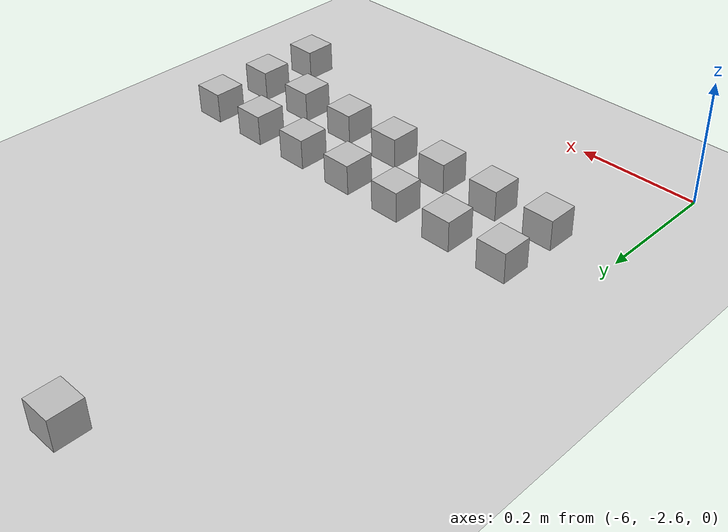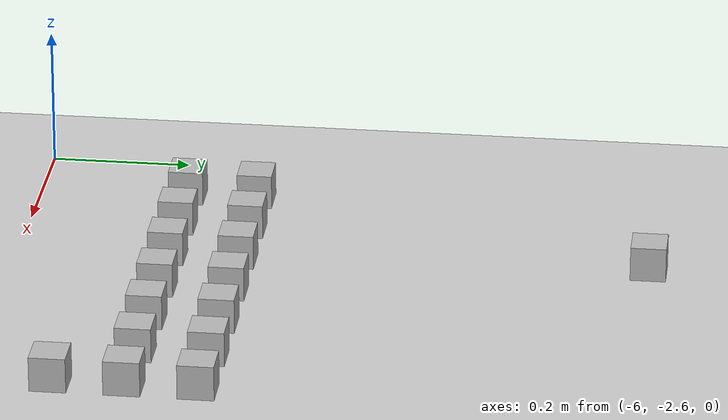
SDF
<sdf version="1.6">
 <world name="default">
  <model name="ground_plane">
   <static>1</static>
   <link name="link">
    <collision name="collision">
     <geometry><plane><normal>0 0 1</normal><size>100 100</size></plane></geometry>
     <surface><friction><ode><mu>100</mu><mu2>50</mu2></ode></friction></surface>
    </collision>
    <visual name="visual">
     <cast_shadows>0</cast_shadows>
     <geometry><plane><normal>0 0 1</normal><size>100 100</size></plane></geometry>
     <material>
      <script><uri>file://media/materials/scripts/gazebo.material</uri><name>Gazebo/Grey</name></script>
     </material>
    </visual>
   </link>
  </model>
  <model name="at14">
   <static>0</static>
   <link name="link">
    <inertial>
     <mass>0.01</mass>
     <inertia><ixx>4e-05</ixx><ixy>0</ixy><ixz>0</ixz><iyy>4e-05</iyy><iyz>0</iyz><izz>4e-05</izz></inertia>
    </inertial>
    <visual name="visual">
     <geometry><box><size>0.05 0.05 0.05</size></box></geometry>
     <material>
      <script>
       <uri>model://at0/materials/scripts</uri>
       <uri>model://at0/materials/textures</uri>
       <name>at0/Diffuse</name>
      </script>
     </material>
    </visual>
    <collision name="collision">
     <geometry><box><size>0.05 0.05 0.05</size></box></geometry>
     <surface><friction><ode><mu>0.8</mu><mu2>0.7</mu2></ode></friction></surface>
    </collision>
   </link>
   <pose>-5.2928 -2.48659 0.025 0 -0 0</pose>
  </model>
  <model name="at16">
   <static>0</static>
   <link name="link">
    <inertial>
     <mass>0.01</mass>
     <inertia><ixx>4e-05</ixx><ixy>0</ixy><ixz>0</ixz><iyy>4e-05</iyy><iyz>0</iyz><izz>4e-05</izz></inertia>
    </inertial>
    <visual name="visual">
     <geometry><box><size>0.05 0.05 0.05</size></box></geometry>
     <material>
      <script>
       <uri>model://at0/materials/scripts</uri>
       <uri>model://at0/materials/textures</uri>
       <name>at0/Diffuse</name>
      </script>
     </material>
    </visual>
    <collision name="collision">
     <geometry><box><size>0.05 0.05 0.05</size></box></geometry>
     <surface><friction><ode><mu>0.8</mu><mu2>0.7</mu2></ode></friction></surface>
    </collision>
   </link>
   <pose>-5.8928 -2.38659 0.025 0 -0 0</pose>
  </model>
  <model name="at17">
   <static>0</static>
   <link name="link">
    <inertial>
     <mass>0.01</mass>
     <inertia><ixx>4e-05</ixx><ixy>0</ixy><ixz>0</ixz><iyy>4e-05</iyy><iyz>0</iyz><izz>4e-05</izz></inertia>
    </inertial>
    <visual name="visual">
     <geometry><box><size>0.05 0.05 0.05</size></box></geometry>
     <material>
      <script>
       <uri>model://at0/materials/scripts</uri>
       <uri>model://at0/materials/textures</uri>
       <name>at0/Diffuse</name>
      </script>
     </material>
    </visual>
    <collision name="collision">
     <geometry><box><size>0.05 0.05 0.05</size></box></geometry>
     <surface><friction><ode><mu>0.8</mu><mu2>0.7</mu2></ode></friction></surface>
    </collision>
   </link>
   <pose>-5.7928 -2.38659 0.025 0 -0 0</pose>
  </model>
  <model name="at18">
   <static>0</static>
   <link name="link">
    <inertial>
     <mass>0.01</mass>
     <inertia><ixx>4e-05</ixx><ixy>0</ixy><ixz>0</ixz><iyy>4e-05</iyy><iyz>0</iyz><izz>4e-05</izz></inertia>
    </inertial>
    <visual name="visual">
     <geometry><box><size>0.05 0.05 0.05</size></box></geometry>
     <material>
      <script>
       <uri>model://at0/materials/scripts</uri>
       <uri>model://at0/materials/textures</uri>
       <name>at0/Diffuse</name>
      </script>
     </material>
    </visual>
    <collision name="collision">
     <geometry><box><size>0.05 0.05 0.05</size></box></geometry>
     <surface><friction><ode><mu>0.8</mu><mu2>0.7</mu2></ode></friction></surface>
    </collision>
   </link>
   <pose>-5.6928 -2.38659 0.025 0 -0 0</pose>
  </model>
  <model name="at19">
   <static>0</static>
   <link name="link">
    <inertial>
     <mass>0.01</mass>
     <inertia><ixx>4e-05</ixx><ixy>0</ixy><ixz>0</ixz><iyy>4e-05</iyy><iyz>0</iyz><izz>4e-05</izz></inertia>
    </inertial>
    <visual name="visual">
     <geometry><box><size>0.05 0.05 0.05</size></box></geometry>
     <material>
      <script>
       <uri>model://at0/materials/scripts</uri>
       <uri>model://at0/materials/textures</uri>
       <name>at0/Diffuse</name>
      </script>
     </material>
    </visual>
    <collision name="collision">
     <geometry><box><size>0.05 0.05 0.05</size></box></geometry>
     <surface><friction><ode><mu>0.8</mu><mu2>0.7</mu2></ode></friction></surface>
    </collision>
   </link>
   <pose>-5.5928 -2.38659 0.025 0 -0 0</pose>
  </model>
  <model name="at20">
   <static>0</static>
   <link name="link">
    <inertial>
     <mass>0.01</mass>
     <inertia><ixx>4e-05</ixx><ixy>0</ixy><ixz>0</ixz><iyy>4e-05</iyy><iyz>0</iyz><izz>4e-05</izz></inertia>
    </inertial>
    <visual name="visual">
     <geometry><box><size>0.05 0.05 0.05</size></box></geometry>
     <material>
      <script>
       <uri>model://at0/materials/scripts</uri>
       <uri>model://at0/materials/textures</uri>
       <name>at0/Diffuse</name>
      </script>
     </material>
    </visual>
    <collision name="collision">
     <geometry><box><size>0.05 0.05 0.05</size></box></geometry>
     <surface><friction><ode><mu>0.8</mu><mu2>0.7</mu2></ode></friction></surface>
    </collision>
   </link>
   <pose>-5.4928 -2.38659 0.025 0 -0 0</pose>
  </model>
  <model name="at21">
   <static>0</static>
   <link name="link">
    <inertial>
     <mass>0.01</mass>
     <inertia><ixx>4e-05</ixx><ixy>0</ixy><ixz>0</ixz><iyy>4e-05</iyy><iyz>0</iyz><izz>4e-05</izz></inertia>
    </inertial>
    <visual name="visual">
     <geometry><box><size>0.05 0.05 0.05</size></box></geometry>
     <material>
      <script>
       <uri>model://at0/materials/scripts</uri>
       <uri>model://at0/materials/textures</uri>
       <name>at0/Diffuse</name>
      </script>
     </material>
    </visual>
    <collision name="collision">
     <geometry><box><size>0.05 0.05 0.05</size></box></geometry>
     <surface><friction><ode><mu>0.8</mu><mu2>0.7</mu2></ode></friction></surface>
    </collision>
   </link>
   <pose>-5.3928 -2.38659 0.025 0 -0 0</pose>
  </model>
  <model name="at22">
   <static>0</static>
   <link name="link">
    <inertial>
     <mass>0.01</mass>
     <inertia><ixx>4e-05</ixx><ixy>0</ixy><ixz>0</ixz><iyy>4e-05</iyy><iyz>0</iyz><izz>4e-05</izz></inertia>
    </inertial>
    <visual name="visual">
     <geometry><box><size>0.05 0.05 0.05</size></box></geometry>
     <material>
      <script>
       <uri>model://at0/materials/scripts</uri>
       <uri>model://at0/materials/textures</uri>
       <name>at0/Diffuse</name>
      </script>
     </material>
    </visual>
    <collision name="collision">
     <geometry><box><size>0.05 0.05 0.05</size></box></geometry>
     <surface><friction><ode><mu>0.8</mu><mu2>0.7</mu2></ode></friction></surface>
    </collision>
   </link>
   <pose>-5.2928 -2.38659 0.025 0 -0 0</pose>
  </model>
  <model name="at24">
   <static>0</static>
   <link name="link">
    <inertial>
     <mass>0.01</mass>
     <inertia><ixx>4e-05</ixx><ixy>0</ixy><ixz>0</ixz><iyy>4e-05</iyy><iyz>0</iyz><izz>4e-05</izz></inertia>
    </inertial>
    <visual name="visual">
     <geometry><box><size>0.05 0.05 0.05</size></box></geometry>
     <material>
      <script>
       <uri>model://at0/materials/scripts</uri>
       <uri>model://at0/materials/textures</uri>
       <name>at0/Diffuse</name>
      </script>
     </material>
    </visual>
    <collision name="collision">
     <geometry><box><size>0.05 0.05 0.05</size></box></geometry>
     <surface><friction><ode><mu>0.8</mu><mu2>0.7</mu2></ode></friction></surface>
    </collision>
   </link>
   <pose>-5.8928 -2.28659 0.025 0 -0 0</pose>
  </model>
  <model name="at25">
   <static>0</static>
   <link name="link">
    <inertial>
     <mass>0.01</mass>
     <inertia><ixx>4e-05</ixx><ixy>0</ixy><ixz>0</ixz><iyy>4e-05</iyy><iyz>0</iyz><izz>4e-05</izz></inertia>
    </inertial>
    <visual name="visual">
     <geometry><box><size>0.05 0.05 0.05</size></box></geometry>
     <material>
      <script>
       <uri>model://at0/materials/scripts</uri>
       <uri>model://at0/materials/textures</uri>
       <name>at0/Diffuse</name>
      </script>
     </material>
    </visual>
    <collision name="collision">
     <geometry><box><size>0.05 0.05 0.05</size></box></geometry>
     <surface><friction><ode><mu>0.8</mu><mu2>0.7</mu2></ode></friction></surface>
    </collision>
   </link>
   <pose>-5.7928 -2.28659 0.025 0 -0 0</pose>
  </model>
  <model name="at26">
   <static>0</static>
   <link name="link">
    <inertial>
     <mass>0.01</mass>
     <inertia><ixx>4e-05</ixx><ixy>0</ixy><ixz>0</ixz><iyy>4e-05</iyy><iyz>0</iyz><izz>4e-05</izz></inertia>
    </inertial>
    <visual name="visual">
     <geometry><box><size>0.05 0.05 0.05</size></box></geometry>
     <material>
      <script>
       <uri>model://at0/materials/scripts</uri>
       <uri>model://at0/materials/textures</uri>
       <name>at0/Diffuse</name>
      </script>
     </material>
    </visual>
    <collision name="collision">
     <geometry><box><size>0.05 0.05 0.05</size></box></geometry>
     <surface><friction><ode><mu>0.8</mu><mu2>0.7</mu2></ode></friction></surface>
    </collision>
   </link>
   <pose>-5.6928 -2.28659 0.025 0 -0 0</pose>
  </model>
  <model name="at27">
   <static>0</static>
   <link name="link">
    <inertial>
     <mass>0.01</mass>
     <inertia><ixx>4e-05</ixx><ixy>0</ixy><ixz>0</ixz><iyy>4e-05</iyy><iyz>0</iyz><izz>4e-05</izz></inertia>
    </inertial>
    <visual name="visual">
     <geometry><box><size>0.05 0.05 0.05</size></box></geometry>
     <material>
      <script>
       <uri>model://at0/materials/scripts</uri>
       <uri>model://at0/materials/textures</uri>
       <name>at0/Diffuse</name>
      </script>
     </material>
    </visual>
    <collision name="collision">
     <geometry><box><size>0.05 0.05 0.05</size></box></geometry>
     <surface><friction><ode><mu>0.8</mu><mu2>0.7</mu2></ode></friction></surface>
    </collision>
   </link>
   <pose>-5.5928 -2.28659 0.025 0 -0 0</pose>
  </model>
  <model name="at28">
   <static>0</static>
   <link name="link">
    <inertial>
     <mass>0.01</mass>
     <inertia><ixx>4e-05</ixx><ixy>0</ixy><ixz>0</ixz><iyy>4e-05</iyy><iyz>0</iyz><izz>4e-05</izz></inertia>
    </inertial>
    <visual name="visual">
     <geometry><box><size>0.05 0.05 0.05</size></box></geometry>
     <material>
      <script>
       <uri>model://at0/materials/scripts</uri>
       <uri>model://at0/materials/textures</uri>
       <name>at0/Diffuse</name>
      </script>
     </material>
    </visual>
    <collision name="collision">
     <geometry><box><size>0.05 0.05 0.05</size></box></geometry>
     <surface><friction><ode><mu>0.8</mu><mu2>0.7</mu2></ode></friction></surface>
    </collision>
   </link>
   <pose>-5.4928 -2.28659 0.025 0 -0 0</pose>
  </model>
  <model name="at29">
   <static>0</static>
   <link name="link">
    <inertial>
     <mass>0.01</mass>
     <inertia><ixx>4e-05</ixx><ixy>0</ixy><ixz>0</ixz><iyy>4e-05</iyy><iyz>0</iyz><izz>4e-05</izz></inertia>
    </inertial>
    <visual name="visual">
     <geometry><box><size>0.05 0.05 0.05</size></box></geometry>
     <material>
      <script>
       <uri>model://at0/materials/scripts</uri>
       <uri>model://at0/materials/textures</uri>
       <name>at0/Diffuse</name>
      </script>
     </material>
    </visual>
    <collision name="collision">
     <geometry><box><size>0.05 0.05 0.05</size></box></geometry>
     <surface><friction><ode><mu>0.8</mu><mu2>0.7</mu2></ode></friction></surface>
    </collision>
   </link>
   <pose>-5.3928 -2.28659 0.025 0 -0 0</pose>
  </model>
  <model name="at30">
   <static>0</static>
   <link name="link">
    <inertial>
     <mass>0.01</mass>
     <inertia><ixx>4e-05</ixx><ixy>0</ixy><ixz>0</ixz><iyy>4e-05</iyy><iyz>0</iyz><izz>4e-05</izz></inertia>
    </inertial>
    <visual name="visual">
     <geometry><box><size>0.05 0.05 0.05</size></box></geometry>
     <material>
      <script>
       <uri>model://at0/materials/scripts</uri>
       <uri>model://at0/materials/textures</uri>
       <name>at0/Diffuse</name>
      </script>
     </material>
    </visual>
    <collision name="collision">
     <geometry><box><size>0.05 0.05 0.05</size></box></geometry>
     <surface><friction><ode><mu>0.8</mu><mu2>0.7</mu2></ode></friction></surface>
    </collision>
   </link>
   <pose>-5.2928 -2.28659 0.025 0 -0 0</pose>
  </model>
  <model name="at120">
   <static>0</static>
   <link name="link">
    <inertial>
     <mass>0.01</mass>
     <inertia><ixx>4e-05</ixx><ixy>0</ixy><ixz>0</ixz><iyy>4e-05</iyy><iyz>0</iyz><izz>4e-05</izz></inertia>
    </inertial>
    <visual name="visual">
     <geometry><box><size>0.05 0.05 0.05</size></box></geometry>
     <material>
      <script>
       <uri>model://at0/materials/scripts</uri>
       <uri>model://at0/materials/textures</uri>
       <name>at0/Diffuse</name>
      </script>
     </material>
    </visual>
    <collision name="collision">
     <geometry><box><size>0.05 0.05 0.05</size></box></geometry>
     <surface><friction><ode><mu>0.8</mu><mu2>0.7</mu2></ode></friction></surface>
    </collision>
   </link>
   <pose>-5.71879 -1.70934 0.025 0 -0 0</pose>
  </model>
 </world>
</sdf>
